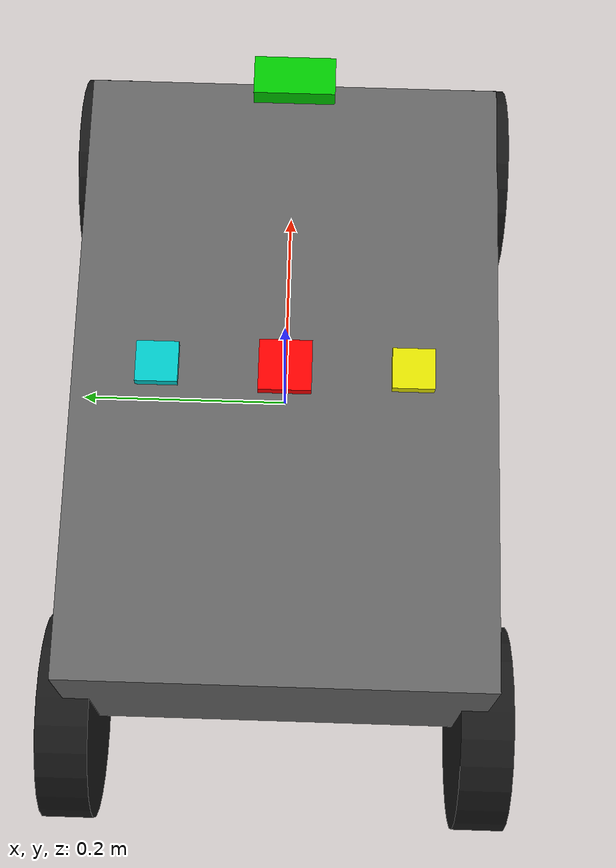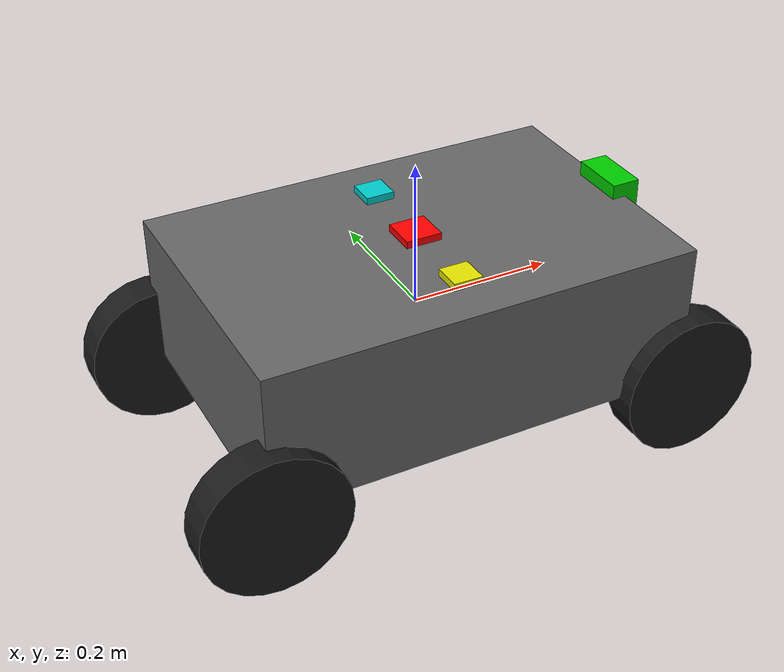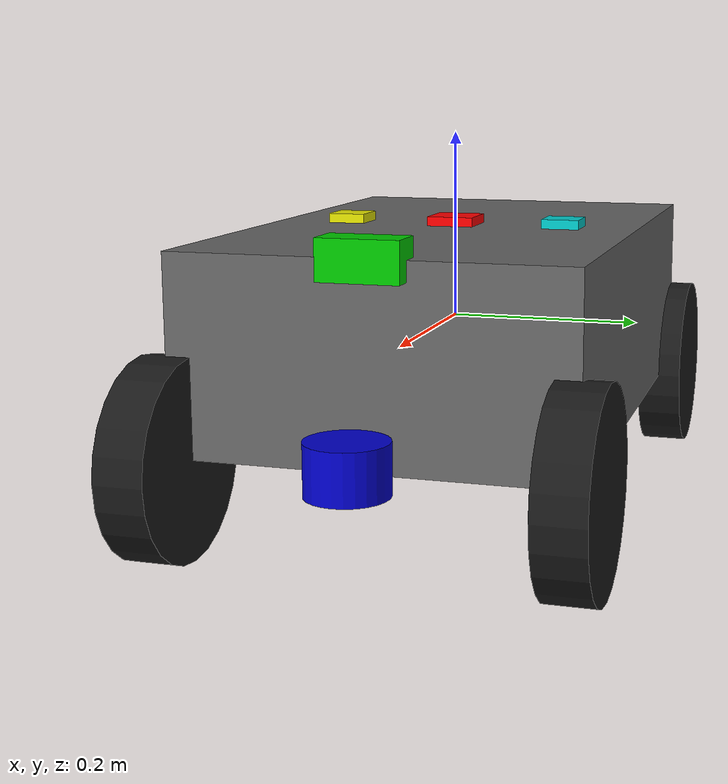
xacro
<?xml version="1.0"?>
<robot name="racecar" xmlns:xacro="http://www.ros.org/wiki/xacro">

  <!-- 底盘几何与质量参数 -->
  <xacro:property name="base_len"  value="0.6"/>
  <xacro:property name="base_wid"  value="0.4"/>
  <xacro:property name="base_hei"  value="0.2"/>
  <xacro:property name="base_mass" value="220.0"/>

  <xacro:property name="wheel_radius" value="0.1"/>
  <xacro:property name="wheel_width"  value="0.05"/>
  <xacro:property name="wheel_mass"   value="10.0"/>
  <xacro:property name="wheelbase"    value="0.6"/>
  <xacro:property name="track_width"  value="0.4"/>

  <!-- 底盘base_link -->
  <link name="base_link">
    <visual>
      <geometry><box size="${base_len} ${base_wid} ${base_hei}"/></geometry>
      <material name="grey"><color rgba="0.4 0.4 0.4 1.0"/></material>
    </visual>
    <collision>
      <geometry><box size="${base_len} ${base_wid} ${base_hei}"/></geometry>
    </collision>
    <inertial>
      <mass value="${base_mass}"/>
      <inertia
        ixx="${(1/12)*base_mass*(base_wid*base_wid + base_hei*base_hei)}" ixy="0" ixz="0"
        iyy="${(1/12)*base_mass*(base_len*base_len + base_hei*base_hei)}" iyz="0"
        izz="${(1/12)*base_mass*(base_len*base_len + base_wid*base_wid)}"/>
    </inertial>
  </link>

  <!--后轮宏：continuous joint绕Y轴转动-->
  <xacro:macro name="wheel" params="name x y">
    <link name="${name}">
      <visual>
        <origin rpy="1.5708 0 0" xyz="0 0 0"/>
        <geometry><cylinder radius="${wheel_radius}" length="${wheel_width}"/></geometry>
        <material name="black"><color rgba="0.1 0.1 0.1 1.0"/></material>
      </visual>
      <collision>
        <origin rpy="1.5708 0 0" xyz="0 0 0"/>
        <geometry><cylinder radius="${wheel_radius}" length="${wheel_width}"/></geometry>
      </collision>
      <inertial>
        <origin rpy="1.5708 0 0" xyz="0 0 0"/>
        <mass value="${wheel_mass}"/>
        <inertia
          ixx="${(1/12)*wheel_mass*(3*wheel_radius*wheel_radius + wheel_width*wheel_width)}" ixy="0" ixz="0"
          iyy="${(1/12)*wheel_mass*(3*wheel_radius*wheel_radius + wheel_width*wheel_width)}" iyz="0"
          izz="${(1/2)*wheel_mass*wheel_radius*wheel_radius}"/>
      </inertial>
    </link>
    <joint name="${name}_joint" type="continuous">
      <parent link="base_link"/>
      <child  link="${name}"/>
      <origin xyz="${x} ${y} ${-base_hei/2}" rpy="0 0 0"/>
      <axis xyz="0 1 0"/>
    </joint>
  </xacro:macro>

  <!-- 前轮宏revolute joint绕Z轴转向 + continuous joint绕Y轴滚动 -->
  <xacro:macro name="steer_wheel" params="prefix joint_x joint_y">
    <!-- 转向节 knuckle -->
    <link name="${prefix}_knuckle">
      <inertial>
        <mass value="0.1"/>
        <inertia ixx="1e-4" ixy="0" ixz="0" iyy="1e-4" iyz="0" izz="1e-4"/>
      </inertial>
    </link>
    <!--base_link -> knuckle，转向轴绕Z-->
    <joint name="${prefix}_steer_joint" type="revolute">
      <parent link="base_link"/>
      <child link="${prefix}_knuckle"/>
      <origin xyz="${joint_x} ${joint_y} ${-base_hei/2}" rpy="0 0 0"/>
      <axis xyz="0 0 1"/>
      <limit lower="-0.5" upper="0.5" effort="100" velocity="10"/>
    </joint>
    <!--前轮link-->
    <link name="${prefix}_wheel">
      <visual>
        <origin rpy="1.5708 0 0" xyz="0 0 0"/>
        <geometry><cylinder radius="${wheel_radius}" length="${wheel_width}"/></geometry>
        <material name="black"><color rgba="0.1 0.1 0.1 1.0"/></material>
      </visual>
      <collision>
        <origin rpy="1.5708 0 0" xyz="0 0 0"/>
        <geometry><cylinder radius="${wheel_radius}" length="${wheel_width}"/></geometry>
      </collision>
      <inertial>
        <origin rpy="1.5708 0 0" xyz="0 0 0"/>
        <mass value="${wheel_mass}"/>
        <inertia ixx="0.01" ixy="0" ixz="0" iyy="0.01" iyz="0" izz="0.01"/>
      </inertial>
    </link>
    <!--knuckle -> wheel,滚动轴绕Y-->
    <joint name="${prefix}_wheel_roll_joint" type="continuous">
      <parent link="${prefix}_knuckle"/>
      <child link="${prefix}_wheel"/>
      <origin xyz="0 0 0" rpy="0 0 0"/>
      <axis xyz="0 1 0"/>
    </joint>
  </xacro:macro>

  <!--四个车轮：前轮带转向节，后轮仅滚动-->
  <xacro:steer_wheel prefix="front_left_wheel"  joint_x="${base_len/2}"  joint_y="${base_wid/2}"/>
  <xacro:steer_wheel prefix="front_right_wheel" joint_x="${base_len/2}"  joint_y="${-base_wid/2}"/>
  <xacro:wheel name="rear_left_wheel"   x="${-base_len/2}" y="${base_wid/2}"/>
  <xacro:wheel name="rear_right_wheel"  x="${-base_len/2}" y="${-base_wid/2}"/>

  <!--IMU，100Hz，位于底盘中心上方-->
  <link name="imu_link">
    <visual>
      <geometry><box size="0.05 0.05 0.02"/></geometry>
      <material name="red"><color rgba="1.0 0.0 0.0 1.0"/></material>
    </visual>
    <inertial>
      <mass value="0.01"/>
      <inertia ixx="1e-6" ixy="0" ixz="0" iyy="1e-6" iyz="0" izz="1e-6"/>
    </inertial>
  </link>
  <joint name="imu_joint" type="fixed">
    <parent link="base_link"/>
    <child  link="imu_link"/>
    <origin xyz="0 0 ${base_hei/2}" rpy="0 0 0"/>
  </joint>
  <gazebo reference="imu_link">
    <sensor name="imu_sensor" type="imu">
      <always_on>true</always_on>
      <update_rate>100</update_rate>
      <topic>imu</topic>
      <gz_frame_id>imu_link</gz_frame_id>
    </sensor>
  </gazebo>

  <!--传感器2: 磁力计，50Hz，偏右0.12m-->
  <link name="mag_link">
    <visual>
      <geometry><box size="0.04 0.04 0.02"/></geometry>
      <material name="cyan"><color rgba="0.0 0.8 0.8 1.0"/></material>
    </visual>
    <inertial>
      <mass value="0.01"/>
      <inertia ixx="1e-6" ixy="0" ixz="0" iyy="1e-6" iyz="0" izz="1e-6"/>
    </inertial>
  </link>
  <joint name="mag_joint" type="fixed">
    <parent link="base_link"/>
    <child  link="mag_link"/>
    <origin xyz="0 0.12 ${base_hei/2}" rpy="0 0 0"/>
  </joint>
  <gazebo reference="mag_link">
    <sensor name="mag_sensor" type="magnetometer">
      <always_on>true</always_on>
      <update_rate>50</update_rate>
      <topic>magnetometer</topic>
      <gz_frame_id>mag_link</gz_frame_id>
    </sensor>
  </gazebo>

  <!--传感器3: GPS，10Hz，偏左0.12m-->
  <link name="gps_link">
    <visual>
      <geometry><box size="0.04 0.04 0.02"/></geometry>
      <material name="yellow"><color rgba="0.9 0.9 0.0 1.0"/></material>
    </visual>
    <inertial>
      <mass value="0.01"/>
      <inertia ixx="1e-6" ixy="0" ixz="0" iyy="1e-6" iyz="0" izz="1e-6"/>
    </inertial>
  </link>
  <joint name="gps_joint" type="fixed">
    <parent link="base_link"/>
    <child  link="gps_link"/>
    <origin xyz="0 -0.12 ${base_hei/2}" rpy="0 0 0"/>
  </joint>
  <gazebo reference="gps_link">
    <sensor name="gps_sensor" type="navsat">
      <always_on>true</always_on>
      <update_rate>10</update_rate>
      <topic>navsat</topic>
      <gz_frame_id>gps_link</gz_frame_id>
    </sensor>
  </gazebo>

  <!--传感器4: 里程计，50Hz，发布 /odom 话题和odom->base_link变换-->
  <gazebo>
    <plugin filename="gz-sim-odometry-publisher-system"
            name="gz::sim::systems::OdometryPublisher">
      <dimensions>3</dimensions>
      <odom_frame>odom</odom_frame>
      <robot_base_frame>base_link</robot_base_frame>
      <odom_topic>odom</odom_topic>
      <odom_publish_frequency>50</odom_publish_frequency>
    </plugin>
  </gazebo>

  <!--传感器5: 相机，30Hz，车头正前方-->
  <link name="camera_link">
    <visual>
      <geometry><box size="0.04 0.08 0.04"/></geometry>
      <material name="green"><color rgba="0.0 0.8 0.0 1.0"/></material>
    </visual>
    <inertial>
      <mass value="0.01"/>
      <inertia ixx="1e-6" ixy="0" ixz="0" iyy="1e-6" iyz="0" izz="1e-6"/>
    </inertial>
  </link>
  <joint name="camera_joint" type="fixed">
    <parent link="base_link"/>
    <child  link="camera_link"/>
    <origin xyz="${base_len/2} 0 ${base_hei/2}" rpy="0 0 0"/>
  </joint>
  <gazebo reference="camera_link">
    <sensor name="camera_sensor" type="camera">
      <always_on>true</always_on>
      <update_rate>30</update_rate>
      <topic>camera</topic>
      <gz_frame_id>camera_link</gz_frame_id>
      <camera>
        <horizontal_fov>1.047</horizontal_fov>
        <image><width>640</width><height>480</height></image>
        <clip><near>0.1</near><far>100</far></clip>
      </camera>
    </sensor>
  </gazebo>

  <!--传感器6: GPU 激光雷达，10Hz，360线，0.12-30m-->
  <link name="lidar_link">
    <visual>
      <geometry><cylinder radius="0.04" length="0.05"/></geometry>
      <material name="blue2"><color rgba="0.0 0.0 0.8 1.0"/></material>
    </visual>
    <inertial>
      <mass value="0.01"/>
      <inertia ixx="1e-6" ixy="0" ixz="0" iyy="1e-6" iyz="0" izz="1e-6"/>
    </inertial>
  </link>
  <joint name="lidar_joint" type="fixed">
    <parent link="base_link"/>
    <child  link="lidar_link"/>
    <origin xyz="${base_len/2 + 0.05} 0 -0.08" rpy="0 0 0"/>
  </joint>
  <gazebo reference="lidar_link">
    <sensor name="lidar_sensor" type="gpu_lidar">
      <always_on>true</always_on>
      <update_rate>10</update_rate>
      <topic>scan</topic>
      <gz_frame_id>lidar_link</gz_frame_id>
      <lidar>
        <scan>
          <horizontal>
            <samples>360</samples>
            <resolution>1</resolution>
            <min_angle>-3.141592</min_angle>
            <max_angle>3.141592</max_angle>
          </horizontal>
          <vertical>
            <samples>1</samples>
            <resolution>1</resolution>
            <min_angle>0</min_angle>
            <max_angle>0</max_angle>
          </vertical>
        </scan>
        <range>
          <min>0.12</min>
          <max>30.0</max>
          <resolution>0.01</resolution>
        </range>
      </lidar>
    </sensor>
  </gazebo>

  <!--Ackermann转向驱动插件-->
  <gazebo>
    <plugin filename="gz-sim-ackermann-steering-system"
            name="gz::sim::systems::AckermannSteering">
      <left_joint>rear_left_wheel_joint</left_joint>
      <right_joint>rear_right_wheel_joint</right_joint>
      <left_steering_joint>front_left_wheel_steer_joint</left_steering_joint>
      <right_steering_joint>front_right_wheel_steer_joint</right_steering_joint>
      <rear_left_wheel_joint>rear_left_wheel_joint</rear_left_wheel_joint>
      <rear_right_wheel_joint>rear_right_wheel_joint</rear_right_wheel_joint>
      <wheel_separation>${base_wid}</wheel_separation>
      <kingpin_width>${base_wid}</kingpin_width>
      <wheel_radius>${wheel_radius}</wheel_radius>
      <wheel_base>${base_len}</wheel_base>
      <max_linear_acceleration>3.0</max_linear_acceleration>
      <max_angular_acceleration>5.0</max_angular_acceleration>
      <max_linear_velocity>5.0</max_linear_velocity>
      <max_angular_velocity>3.0</max_angular_velocity>
      <max_steering_angle>1.0</max_steering_angle>
      <topic>/model/racecar/cmd_vel</topic>
    </plugin>
  </gazebo>

</robot>
